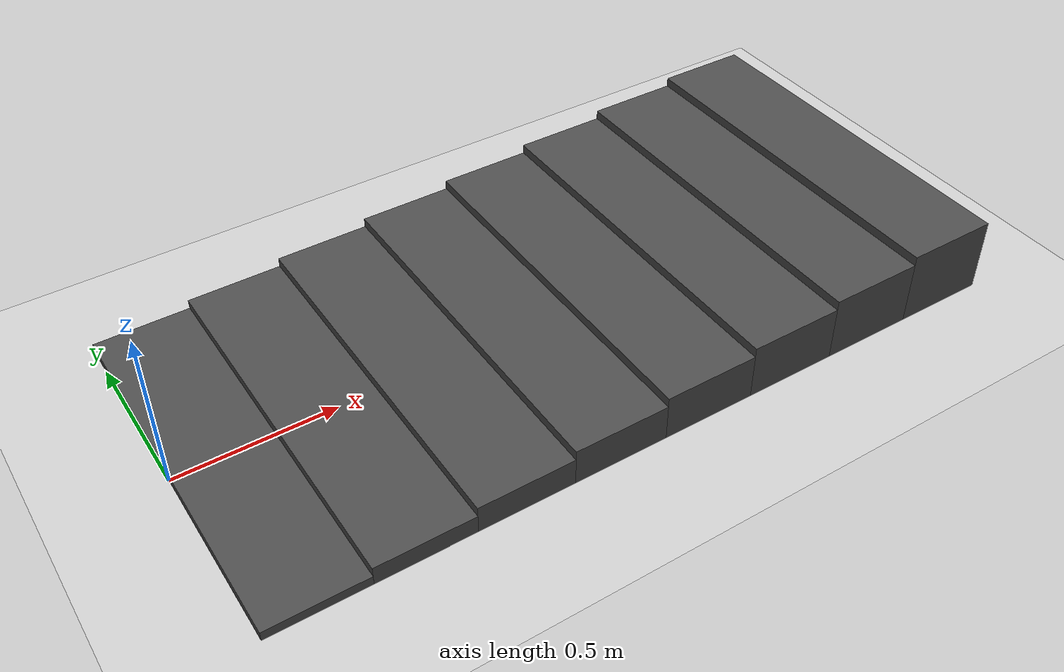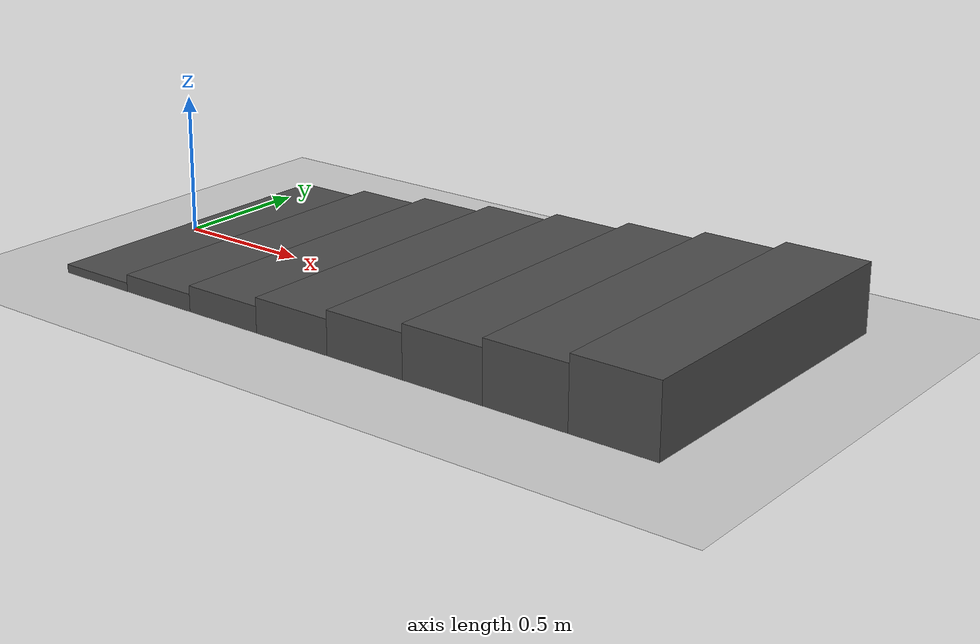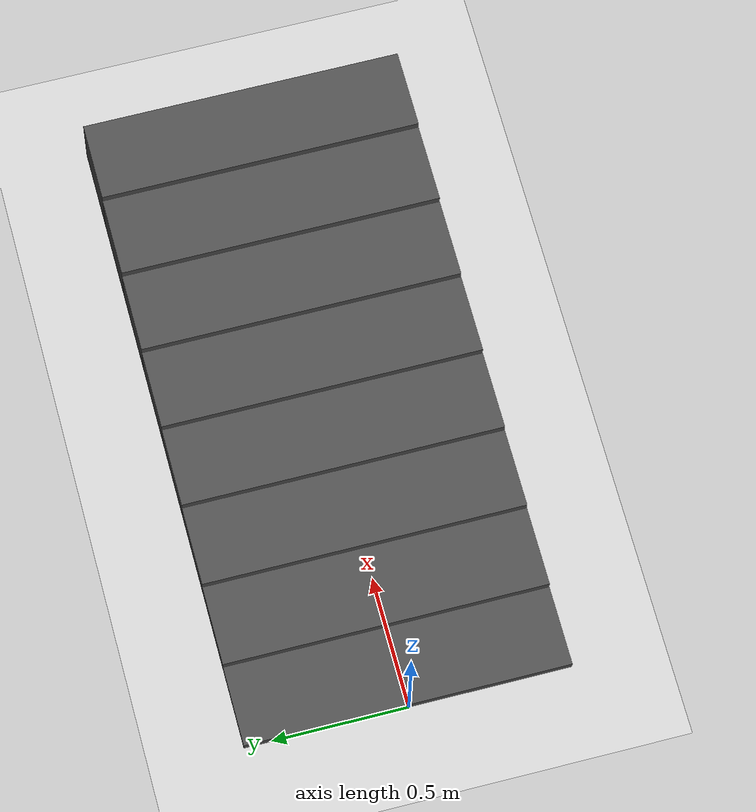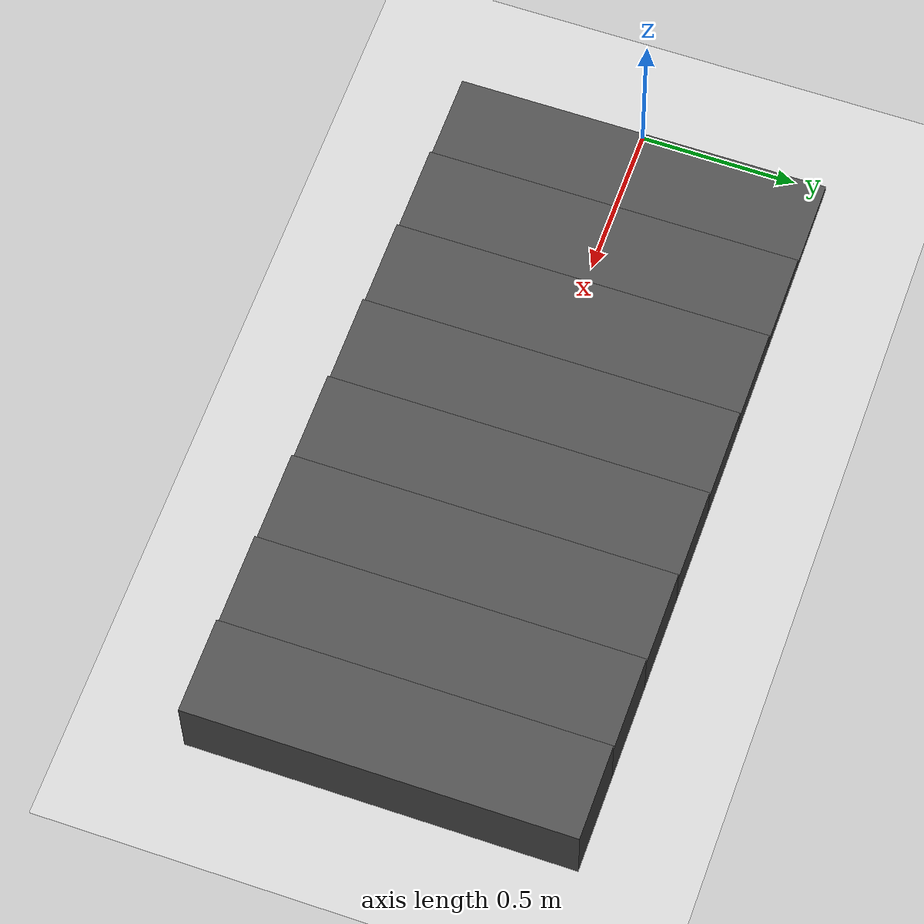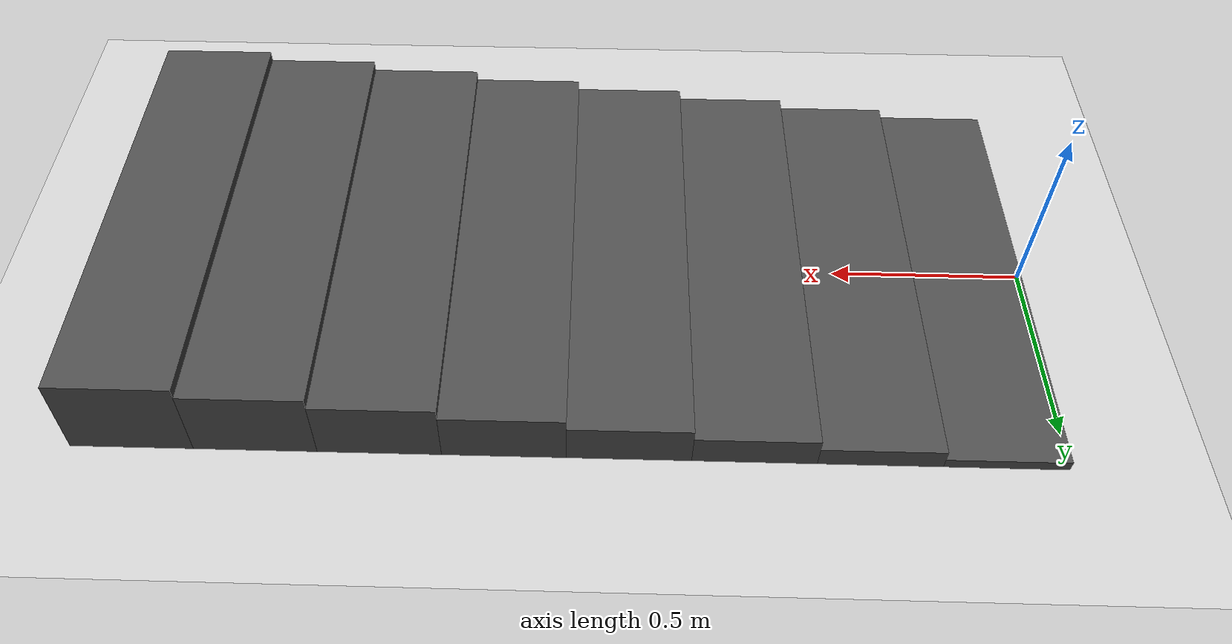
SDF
<?xml version="1.0" ?>
<!-- 由 omni_world.py 自动生成: scene=stairs seed=None -->
<sdf version="1.5">
  <world name="stairs">
    <physics type="ode">
      <type>world</type>
      <max_step_size>0.001</max_step_size>
      <real_time_update_rate>1000</real_time_update_rate>
      <iters>500</iters>
    </physics>
    <include><uri>model://sun</uri></include>
    <include><uri>model://ground_plane</uri></include>
    <model name="stair_0">
      <static>true</static>
      <pose>0.150 0.000 0.015 0.0000 0.0000 0.0000</pose>
      <link name="link">
        <collision name="collision">
          <geometry><box><size>0.300 1.200 0.030</size></box></geometry>
          <surface><friction><ode><mu>1.0</mu><mu2>1.0</mu2></ode></friction></surface>
        </collision>
        <visual name="visual">
          <geometry><box><size>0.300 1.200 0.030</size></box></geometry>
          <material><script><uri>file://media/materials/scripts/gazebo.material</uri>
            <name>Gazebo/DarkGrey</name></script></material>
        </visual>
      </link>
    </model>
    <model name="stair_1">
      <static>true</static>
      <pose>0.450 0.000 0.030 0.0000 0.0000 0.0000</pose>
      <link name="link">
        <collision name="collision">
          <geometry><box><size>0.300 1.200 0.060</size></box></geometry>
          <surface><friction><ode><mu>1.0</mu><mu2>1.0</mu2></ode></friction></surface>
        </collision>
        <visual name="visual">
          <geometry><box><size>0.300 1.200 0.060</size></box></geometry>
          <material><script><uri>file://media/materials/scripts/gazebo.material</uri>
            <name>Gazebo/DarkGrey</name></script></material>
        </visual>
      </link>
    </model>
    <model name="stair_2">
      <static>true</static>
      <pose>0.750 0.000 0.045 0.0000 0.0000 0.0000</pose>
      <link name="link">
        <collision name="collision">
          <geometry><box><size>0.300 1.200 0.090</size></box></geometry>
          <surface><friction><ode><mu>1.0</mu><mu2>1.0</mu2></ode></friction></surface>
        </collision>
        <visual name="visual">
          <geometry><box><size>0.300 1.200 0.090</size></box></geometry>
          <material><script><uri>file://media/materials/scripts/gazebo.material</uri>
            <name>Gazebo/DarkGrey</name></script></material>
        </visual>
      </link>
    </model>
    <model name="stair_3">
      <static>true</static>
      <pose>1.050 0.000 0.060 0.0000 0.0000 0.0000</pose>
      <link name="link">
        <collision name="collision">
          <geometry><box><size>0.300 1.200 0.120</size></box></geometry>
          <surface><friction><ode><mu>1.0</mu><mu2>1.0</mu2></ode></friction></surface>
        </collision>
        <visual name="visual">
          <geometry><box><size>0.300 1.200 0.120</size></box></geometry>
          <material><script><uri>file://media/materials/scripts/gazebo.material</uri>
            <name>Gazebo/DarkGrey</name></script></material>
        </visual>
      </link>
    </model>
    <model name="stair_4">
      <static>true</static>
      <pose>1.350 0.000 0.075 0.0000 0.0000 0.0000</pose>
      <link name="link">
        <collision name="collision">
          <geometry><box><size>0.300 1.200 0.150</size></box></geometry>
          <surface><friction><ode><mu>1.0</mu><mu2>1.0</mu2></ode></friction></surface>
        </collision>
        <visual name="visual">
          <geometry><box><size>0.300 1.200 0.150</size></box></geometry>
          <material><script><uri>file://media/materials/scripts/gazebo.material</uri>
            <name>Gazebo/DarkGrey</name></script></material>
        </visual>
      </link>
    </model>
    <model name="stair_5">
      <static>true</static>
      <pose>1.650 0.000 0.090 0.0000 0.0000 0.0000</pose>
      <link name="link">
        <collision name="collision">
          <geometry><box><size>0.300 1.200 0.180</size></box></geometry>
          <surface><friction><ode><mu>1.0</mu><mu2>1.0</mu2></ode></friction></surface>
        </collision>
        <visual name="visual">
          <geometry><box><size>0.300 1.200 0.180</size></box></geometry>
          <material><script><uri>file://media/materials/scripts/gazebo.material</uri>
            <name>Gazebo/DarkGrey</name></script></material>
        </visual>
      </link>
    </model>
    <model name="stair_6">
      <static>true</static>
      <pose>1.950 0.000 0.105 0.0000 0.0000 0.0000</pose>
      <link name="link">
        <collision name="collision">
          <geometry><box><size>0.300 1.200 0.210</size></box></geometry>
          <surface><friction><ode><mu>1.0</mu><mu2>1.0</mu2></ode></friction></surface>
        </collision>
        <visual name="visual">
          <geometry><box><size>0.300 1.200 0.210</size></box></geometry>
          <material><script><uri>file://media/materials/scripts/gazebo.material</uri>
            <name>Gazebo/DarkGrey</name></script></material>
        </visual>
      </link>
    </model>
    <model name="stair_7">
      <static>true</static>
      <pose>2.250 0.000 0.120 0.0000 0.0000 0.0000</pose>
      <link name="link">
        <collision name="collision">
          <geometry><box><size>0.300 1.200 0.240</size></box></geometry>
          <surface><friction><ode><mu>1.0</mu><mu2>1.0</mu2></ode></friction></surface>
        </collision>
        <visual name="visual">
          <geometry><box><size>0.300 1.200 0.240</size></box></geometry>
          <material><script><uri>file://media/materials/scripts/gazebo.material</uri>
            <name>Gazebo/DarkGrey</name></script></material>
        </visual>
      </link>
    </model>

  </world>
</sdf>
